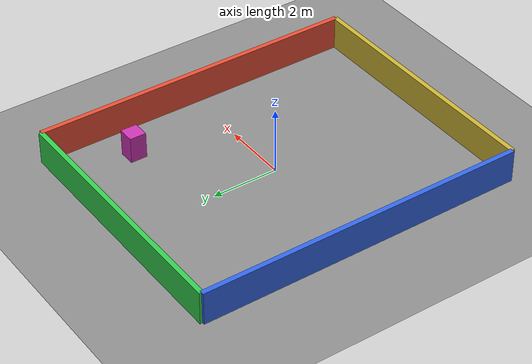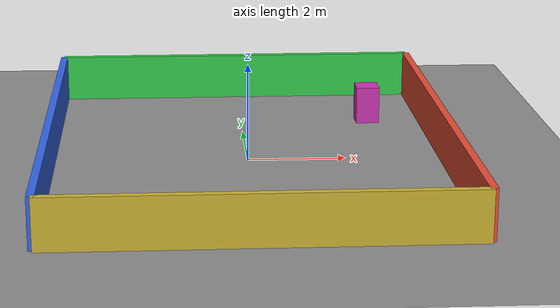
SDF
<?xml version="1.0"?>
<sdf version="1.6"><world name="sensors">
  <gravity>0 0 -9.81</gravity>
  <physics name="default_physics" type="ode">
    <max_step_size>0.001</max_step_size><real_time_update_rate>1000</real_time_update_rate>
  </physics>
  <!-- Classic 11 usa heading 180 para alinhar GPS com X leste / Y norte.
       Conferir os sinais no teste de teleoperacao descrito no guia. -->
  <spherical_coordinates>
    <surface_model>EARTH_WGS84</surface_model>
    <latitude_deg>-8.05</latitude_deg><longitude_deg>-34.9</longitude_deg>
    <elevation>0</elevation><heading_deg>180</heading_deg>
  </spherical_coordinates>
  <scene><ambient>0.5 0.5 0.5 1</ambient><background>0.7 0.8 0.9 1</background></scene>
  <light name="sun" type="directional">
    <pose>0 0 10 0 0 0</pose><diffuse>0.8 0.8 0.8 1</diffuse>
    <specular>0.2 0.2 0.2 1</specular><direction>-0.5 0.1 -0.9</direction>
    <cast_shadows>true</cast_shadows>
  </light>
  <model name="ground_plane"><static>true</static><link name="link">
    <collision name="collision"><geometry><plane><normal>0 0 1</normal><size>50 50</size></plane></geometry></collision>
    <visual name="visual"><geometry><plane><normal>0 0 1</normal><size>50 50</size></plane></geometry>
      <material><ambient>0.45 0.45 0.45 1</ambient><diffuse>0.55 0.55 0.55 1</diffuse></material>
    </visual>
  </link></model>
  <model name="wall_east"><static>true</static><pose>4 0 0.5 0 0 0</pose><link name="link">
    <collision name="collision"><geometry><box><size>0.15 10 1</size></box></geometry></collision>
    <visual name="visual"><geometry><box><size>0.15 10 1</size></box></geometry>
      <material><ambient>0.9 0.3 0.2 1</ambient><diffuse>0.9 0.3 0.2 1</diffuse></material></visual>
  </link></model>
  <model name="wall_west"><static>true</static><pose>-4 0 0.5 0 0 0</pose><link name="link">
    <collision name="collision"><geometry><box><size>0.15 10 1</size></box></geometry></collision>
    <visual name="visual"><geometry><box><size>0.15 10 1</size></box></geometry>
      <material><ambient>0.2 0.4 0.9 1</ambient><diffuse>0.2 0.4 0.9 1</diffuse></material></visual>
  </link></model>
  <model name="wall_north"><static>true</static><pose>0 5 0.5 0 0 0</pose><link name="link">
    <collision name="collision"><geometry><box><size>8 0.15 1</size></box></geometry></collision>
    <visual name="visual"><geometry><box><size>8 0.15 1</size></box></geometry>
      <material><ambient>0.2 0.8 0.3 1</ambient><diffuse>0.2 0.8 0.3 1</diffuse></material></visual>
  </link></model>
  <model name="wall_south"><static>true</static><pose>0 -5 0.5 0 0 0</pose><link name="link">
    <collision name="collision"><geometry><box><size>8 0.15 1</size></box></geometry></collision>
    <visual name="visual"><geometry><box><size>8 0.15 1</size></box></geometry>
      <material><ambient>0.8 0.7 0.2 1</ambient><diffuse>0.8 0.7 0.2 1</diffuse></material></visual>
  </link></model>
  <model name="box"><static>true</static><pose>2.8 2.8 0.4 0 0 0</pose><link name="link">
    <collision name="collision"><geometry><box><size>0.5 0.5 0.8</size></box></geometry></collision>
    <visual name="visual"><geometry><box><size>0.5 0.5 0.8</size></box></geometry>
      <material><ambient>0.8 0.2 0.7 1</ambient><diffuse>0.8 0.2 0.7 1</diffuse></material></visual>
  </link></model>
</world></sdf>
